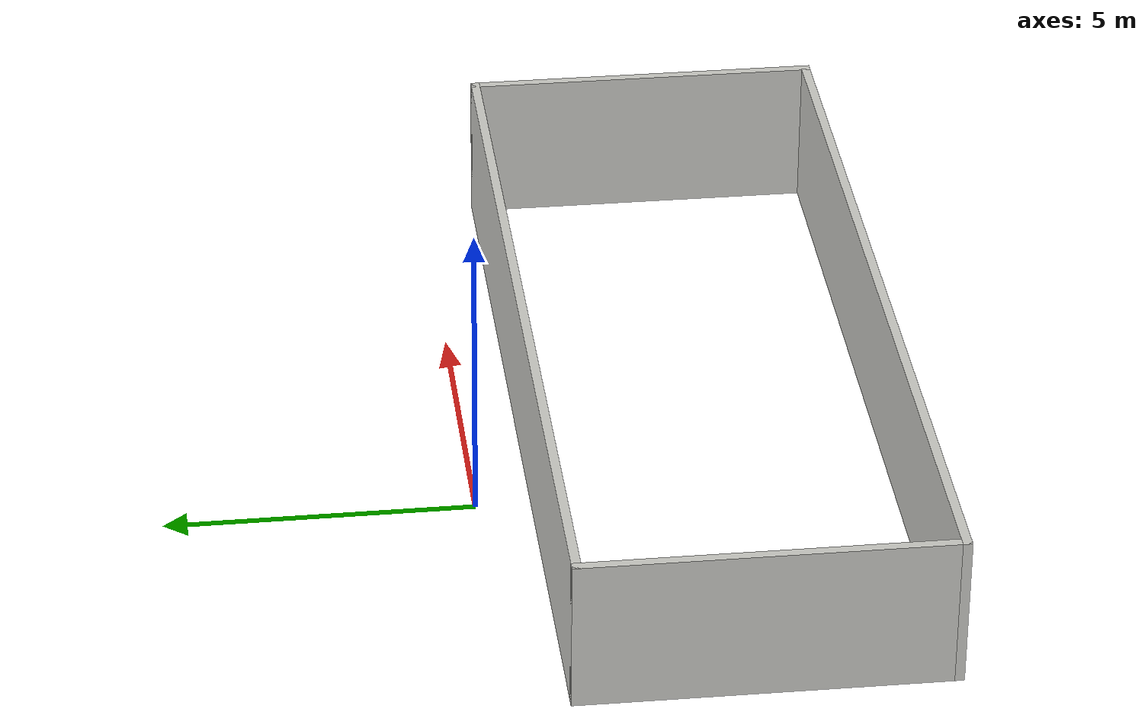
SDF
<?xml version='1.0'?>
<sdf version='1.7'>
  <model name='Untitled'>
    <pose>2.035 -3.4425 0 0 -0 0</pose>
    <link name='Wall_5'>
      <collision name='Wall_5_Collision'>
        <geometry>
          <box>
            <size>15 0.15 2.5</size>
          </box>
        </geometry>
        <pose>0 0 1.25 0 -0 0</pose>
      </collision>
      <visual name='Wall_5_Visual'>
        <pose>0 0 1.25 0 -0 0</pose>
        <geometry>
          <box>
            <size>15 0.15 2.5</size>
          </box>
        </geometry>
        <material>
          <script>
            <uri>file://media/materials/scripts/gazebo.material</uri>
            <name>Gazebo/CeilingTiled</name>
          </script>
          <ambient>0.760784 0.662745 0.627451 1</ambient>
        </material>
        <meta>
          <layer>0</layer>
        </meta>
      </visual>
      <pose>-0 2.4825 0 0 -0 0</pose>
    </link>
    <link name='Wall_6'>
      <collision name='Wall_6_Collision'>
        <geometry>
          <box>
            <size>6 0.15 2.5</size>
          </box>
        </geometry>
        <pose>0 0 1.25 0 -0 0</pose>
      </collision>
      <visual name='Wall_6_Visual'>
        <pose>0 0 1.25 0 -0 0</pose>
        <geometry>
          <box>
            <size>6 0.15 2.5</size>
          </box>
        </geometry>
        <material>
          <script>
            <uri>file://media/materials/scripts/gazebo.material</uri>
            <name>Gazebo/CeilingTiled</name>
          </script>
          <ambient>0.760784 0.662745 0.627451 1</ambient>
        </material>
        <meta>
          <layer>0</layer>
        </meta>
      </visual>
      <pose>7.425 -0.4425 0 0 -0 -1.5708</pose>
    </link>
    <link name='Wall_7'>
      <collision name='Wall_7_Collision'>
        <geometry>
          <box>
            <size>15 0.15 2.5</size>
          </box>
        </geometry>
        <pose>0 0 1.25 0 -0 0</pose>
      </collision>
      <visual name='Wall_7_Visual'>
        <pose>0 0 1.25 0 -0 0</pose>
        <geometry>
          <box>
            <size>15 0.15 2.5</size>
          </box>
        </geometry>
        <material>
          <script>
            <uri>file://media/materials/scripts/gazebo.material</uri>
            <name>Gazebo/CeilingTiled</name>
          </script>
          <ambient>0.921569 0.807843 0.615686 1</ambient>
        </material>
        <meta>
          <layer>0</layer>
        </meta>
      </visual>
      <pose>-0 -3.3675 0 0 -0 3.14159</pose>
    </link>
    <link name='Wall_8'>
      <collision name='Wall_8_Collision'>
        <geometry>
          <box>
            <size>6 0.15 2.5</size>
          </box>
        </geometry>
        <pose>0 0 1.25 0 -0 0</pose>
      </collision>
      <visual name='Wall_8_Visual'>
        <pose>0 0 1.25 0 -0 0</pose>
        <geometry>
          <box>
            <size>6 0.15 2.5</size>
          </box>
        </geometry>
        <material>
          <script>
            <uri>file://media/materials/scripts/gazebo.material</uri>
            <name>Gazebo/CeilingTiled</name>
          </script>
          <ambient>0.760784 0.662745 0.627451 1</ambient>
        </material>
        <meta>
          <layer>0</layer>
        </meta>
      </visual>
      <pose>-7.425 -0.4425 0 0 -0 1.5708</pose>
    </link>
    <static>1</static>
  </model>
</sdf>
